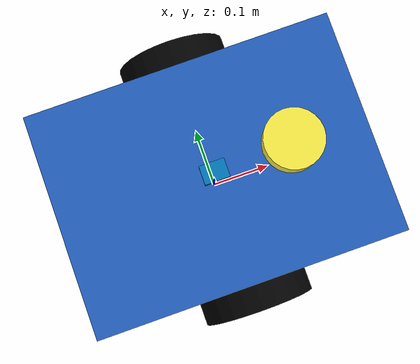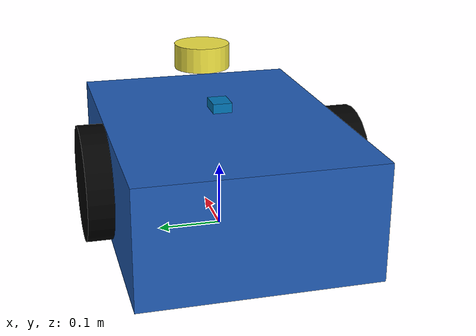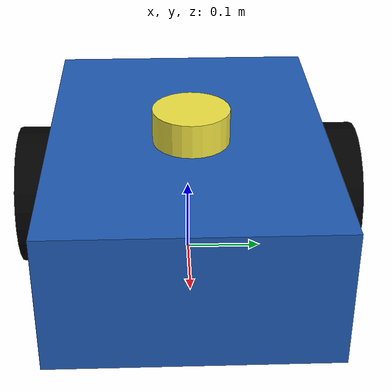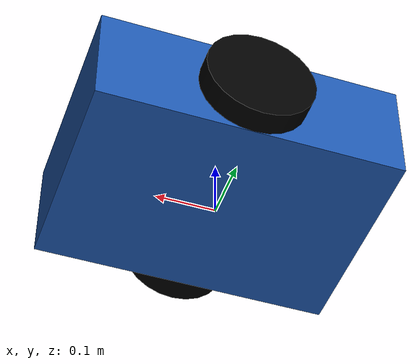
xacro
<?xml version="1.0"?>

<robot xmlns:xacro="http://www.ros.org/wiki/xacro" name="archo">

    <xacro:property name="base_length" value="0.50"/>
    <xacro:property name="base_width" value="0.36"/>
    <xacro:property name="base_height" value="0.18"/>
    <xacro:property name="base_mass" value="12.0"/>
    <xacro:property name="wheel_radius" value="0.09"/>
    <xacro:property name="wheel_width" value="0.04"/>
    <xacro:property name="wheel_mass" value="0.8"/>
    <xacro:property name="wheel_y_offset" value="0.20"/>

    <material name="archo_blue">
        <color rgba="0.12 0.35 0.70 1.0"/>
    </material>

    <material name="wheel_black">
        <color rgba="0.0 0.0 0.0 1.0"/>
    </material>

    <link name="base_footprint"/>

    <link name="base_link">

        <visual>
            <origin xyz="0.0 0.0 0.0" rpy="0.0 0.0 0.0"/>
            <geometry>
                <box size="${base_length} ${base_width} ${base_height}"/>
            </geometry>
            <material name="archo_blue"/>
        </visual>

        <collision>
            <origin xyz="0.0 0.0 0.0" rpy="0.0 0.0 0.0"/>
            <geometry>
                <box size="${base_length} ${base_width} ${base_height}"/>
            </geometry>
        </collision>

        <inertial>
            <origin xyz="0.0 0.0 0.0" rpy="0.0 0.0 0.0"/>
            <mass value="${base_mass}"/>
            <inertia
                ixx="${base_mass * (base_width*base_width + base_height*base_height) / 12.0}"
                ixy="0.0" ixz="0.0"
                iyy="${base_mass * (base_length*base_length + base_height*base_height) / 12.0}"
                iyz="0.0"
                izz="${base_mass * (base_length*base_length + base_width*base_width) / 12.0}"/>
        </inertial>

    </link>

    <xacro:macro name="drive_wheel" params="prefix y_position">

        <link name="${prefix}_wheel_link">

            <visual>
                <origin xyz="0.0 0.0 0.0" rpy="${pi / 2.0} 0.0 0.0"/>
                <geometry>
                    <cylinder radius="${wheel_radius}" length="${wheel_width}"/>
                </geometry>
                <material name="wheel_black"/>
            </visual>

            <collision>
                <origin xyz="0.0 0.0 0.0" rpy="${pi / 2.0} 0.0 0.0"/>
                <geometry>
                    <cylinder radius="${wheel_radius}" length="${wheel_width}"/>
                </geometry>
            </collision>

            <inertial>
                <origin xyz="0.0 0.0 0.0" rpy="0.0 0.0 0.0"/>
                <mass value="${wheel_mass}"/>
                <inertia
                    ixx="${wheel_mass * (3*wheel_radius*wheel_radius + wheel_width*wheel_width) / 12.0}"
                    ixy="0" ixz="0"
                    iyy="${wheel_mass * wheel_radius * wheel_radius / 2.0}"
                    iyz="0"
                    izz="${wheel_mass * (3*wheel_radius*wheel_radius + wheel_width*wheel_width) / 12.0}"/>
            </inertial>

        </link>

        <joint name="${prefix}_wheel_joint" type="continuous">
            <parent link="base_link"/>
            <child link="${prefix}_wheel_link"/>
            <origin xyz="0.0 ${y_position} 0.0" rpy="0.0 0.0 0.0"/>
            <axis xyz="0.0 1.0 0.0"/>
        </joint>

    </xacro:macro>

    <link name="caster_link">

        <visual>
            <geometry>
                <sphere radius="0.04"/>
            </geometry>
        </visual>

        <collision>
            <geometry>
                <sphere radius="0.04"/>
            </geometry>
        </collision>

        <inertial>
            <mass value="0.15"/>
            <inertia ixx="0.000096" ixy="0" ixz="0" iyy="0.000096" iyz="0" izz="0.000096"/>
        </inertial>

    </link>

    <link name="laser_link">

        <visual>
            <geometry>
                <cylinder radius="0.045" length="0.04"/>
            </geometry>
        </visual>

        <collision>
            <geometry>
                <cylinder radius="0.045" length="0.04"/>
            </geometry>
        </collision>

        <inertial>
            <mass value="0.2"/>
            <inertia ixx="0.0002" ixy="0.0" ixz="0.0" iyy="0.0002" iyz="0.0" izz="0.0002"/>
        </inertial>

    </link>

    <link name="imu_link">

        <visual>
            <geometry>
                <box size="0.04 0.03 0.015"/>
            </geometry>
        </visual>

    </link>

    <joint name="laser_joint" type="fixed">
        <parent link="base_link"/>
        <child link="laser_link"/>
        <origin xyz="0.12 0.0 0.16" rpy="0.0 0.0 0.0"/>
    </joint>

    <joint name="imu_joint" type="fixed">
        <parent link="base_link"/>
        <child link="imu_link"/>
        <origin xyz="0.0 0.0 0.11" rpy="0.0 0.0 0.0"/>
    </joint>

    <joint name="caster_joint" type="fixed">
        <parent link="base_link"/>
        <child link="caster_link"/>
        <origin xyz="-0.18 0.0 -0.05" rpy="0.0 0.0 0.0"/>
    </joint>

    <joint name="base_footprint_joint" type="fixed">
        <parent link="base_footprint"/>
        <child link="base_link"/>
        <origin xyz="0.0 0.0 ${base_height / 2.0}" rpy="0.0 0.0 0.0"/>
    </joint>

    <xacro:drive_wheel prefix="left" y_position="${wheel_y_offset}"/>
    <xacro:drive_wheel prefix="right" y_position="${-wheel_y_offset}"/>

    <ros2_control name="ArchoGazeboSystem" type="system">

        <hardware>
            <plugin>gz_ros2_control/GazeboSimSystem</plugin>
        </hardware>

        <joint name="left_wheel_joint">
            <command_interface name="velocity"/>
            <state_interface name="position"/>
            <state_interface name="velocity"/>
        </joint>

        <joint name="right_wheel_joint">
            <command_inteface name="velocity"/>
            <state_interface name="position"/>
            <state_interface name="velocity"/>
        </joint>

    </ros2_control>

    <gazebo>
        <plugin filename="gz_ros2_control-system" name="gz_ros2_control::GazeboSimROS2ControlPlugin">
            <parameters>$(find archo_bringup)/config/controllers.yaml</parameters>
        </plugin>
    </gazebo>

</robot>
